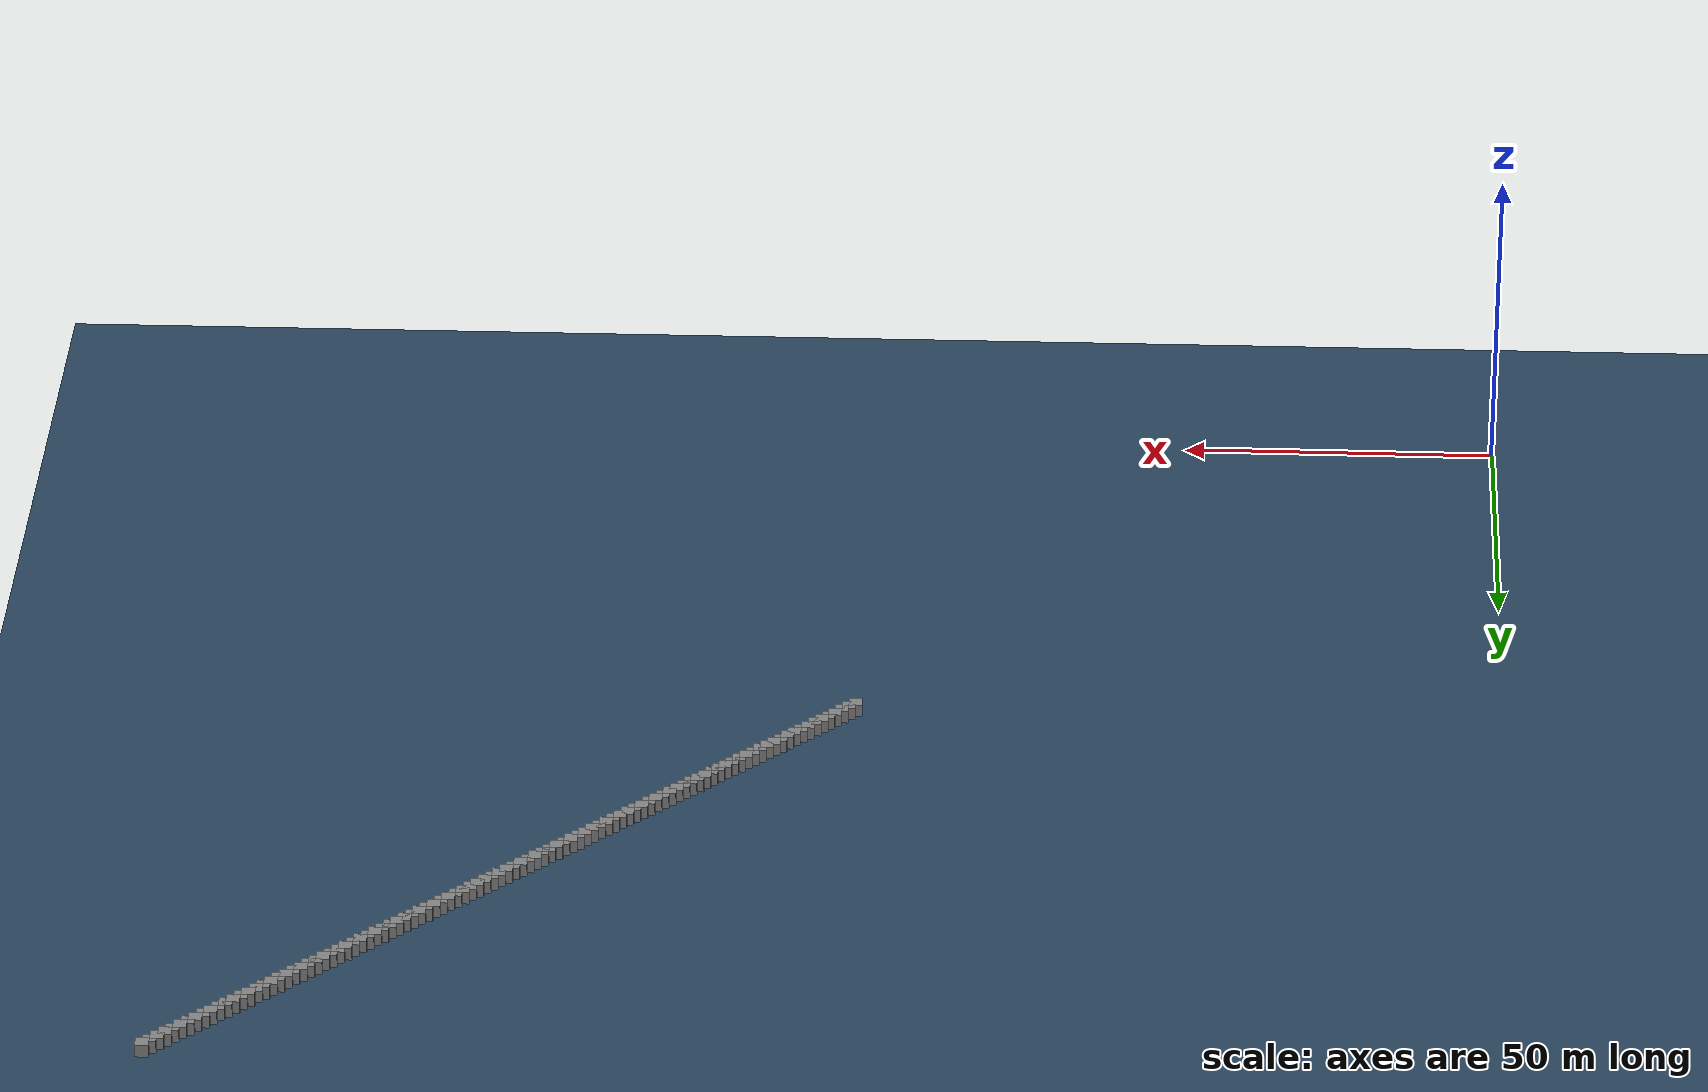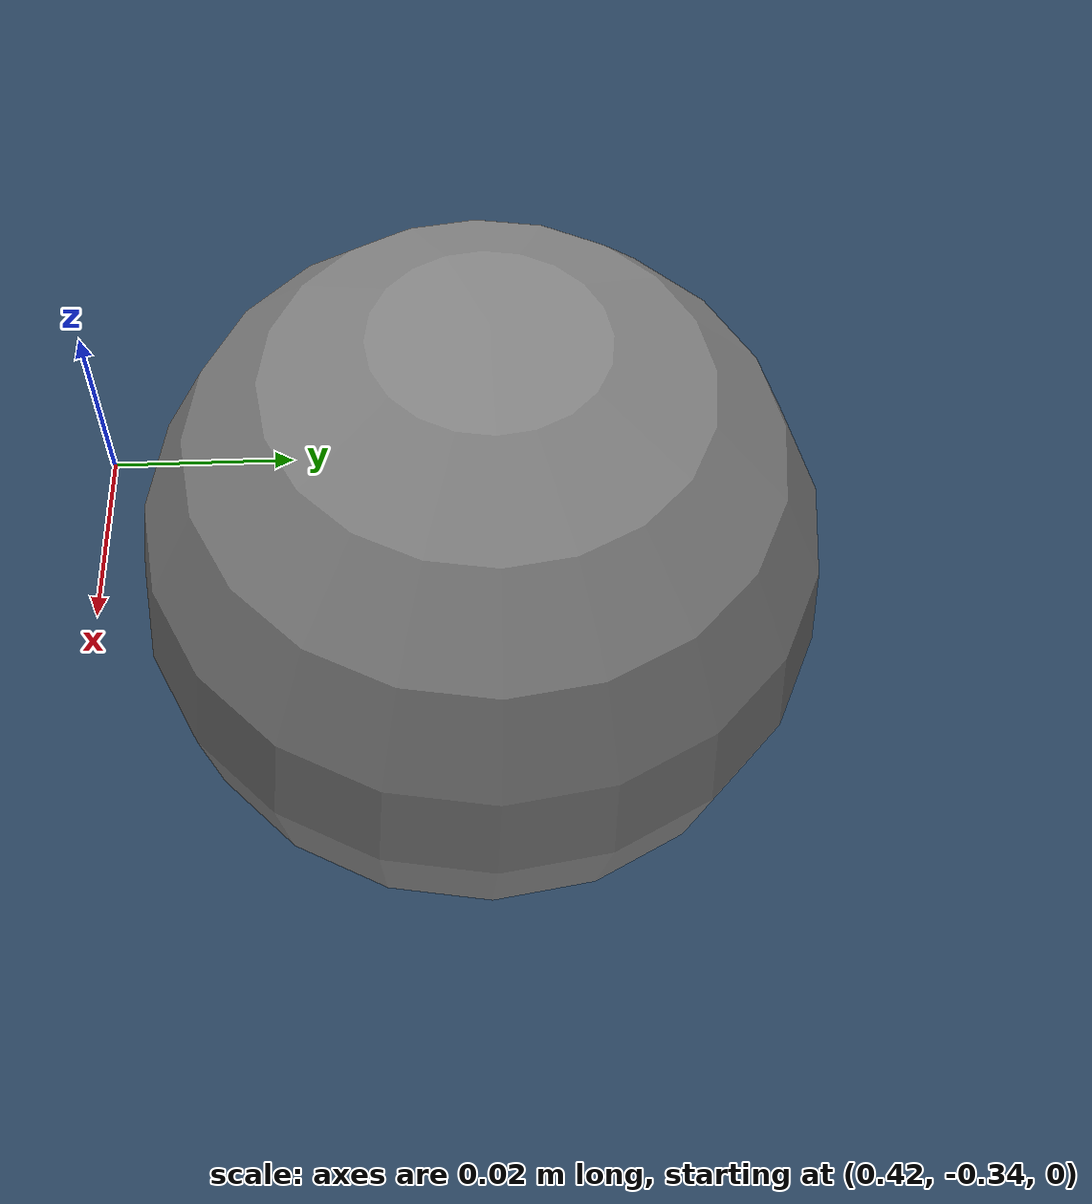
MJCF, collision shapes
<mujoco model="anymal_c scene">
  <include file="anymal_mjx_feetonly.xml" />

  <visual>
    <headlight diffuse="0.6 0.6 0.6" ambient="0.3 0.3 0.3" specular="0 0 0" />
    <rgba haze="0.15 0.25 0.35 1" />
    <global azimuth="120" elevation="-20" />
  </visual>

  <statistic center="0 0 .3" extent="1.2" />

  <asset>
    <texture type="skybox" builtin="gradient" rgb1="0.3 0.5 0.7" rgb2="0 0 0" width="512" height="3072" />
    <texture type="2d" name="groundplane" builtin="checker" mark="edge" rgb1="0.2 0.3 0.4" rgb2="0.1 0.2 0.3" markrgb="0.8 0.8 0.8" width="300" height="300" />
    <material name="groundplane" texture="groundplane" texuniform="true" texrepeat="5 5" reflectance="0.2" />
  </asset>

  <worldbody>
    <light pos="0 0 1.5" dir="0 0 -1" directional="true" />
    <geom name="floor" size="0 0 0.05" type="plane" material="groundplane" contype="2" conaffinity="1" />
  <body pos="100 100 10" quat="1.0 0.0 0.0 0.0" name="box_uHGJJ"><geom type="box" size="1.0 1.0 1.0" contype="2" conaffinity="1" /></body><body pos="101 101 10" quat="1.0 0.0 0.0 0.0" name="box_bRzGw"><geom type="box" size="1.0 1.0 1.0" contype="2" conaffinity="1" /></body><body pos="102 102 10" quat="1.0 0.0 0.0 0.0" name="box_EXtKE"><geom type="box" size="1.0 1.0 1.0" contype="2" conaffinity="1" /></body><body pos="103 103 10" quat="1.0 0.0 0.0 0.0" name="box_GA2zc"><geom type="box" size="1.0 1.0 1.0" contype="2" conaffinity="1" /></body><body pos="104 104 10" quat="1.0 0.0 0.0 0.0" name="box_hZ37R"><geom type="box" size="1.0 1.0 1.0" contype="2" conaffinity="1" /></body><body pos="105 105 10" quat="1.0 0.0 0.0 0.0" name="box_iApLd"><geom type="box" size="1.0 1.0 1.0" contype="2" conaffinity="1" /></body><body pos="106 106 10" quat="1.0 0.0 0.0 0.0" name="box_1Uyft"><geom type="box" size="1.0 1.0 1.0" contype="2" conaffinity="1" /></body><body pos="107 107 10" quat="1.0 0.0 0.0 0.0" name="box_yHT95"><geom type="box" size="1.0 1.0 1.0" contype="2" conaffinity="1" /></body><body pos="108 108 10" quat="1.0 0.0 0.0 0.0" name="box_CMuvy"><geom type="box" size="1.0 1.0 1.0" contype="2" conaffinity="1" /></body><body pos="109 109 10" quat="1.0 0.0 0.0 0.0" name="box_P6yZF"><geom type="box" size="1.0 1.0 1.0" contype="2" conaffinity="1" /></body><body pos="110 110 10" quat="1.0 0.0 0.0 0.0" name="box_B1lmp"><geom type="box" size="1.0 1.0 1.0" contype="2" conaffinity="1" /></body><body pos="111 111 10" quat="1.0 0.0 0.0 0.0" name="box_xBs5U"><geom type="box" size="1.0 1.0 1.0" contype="2" conaffinity="1" /></body><body pos="112 112 10" quat="1.0 0.0 0.0 0.0" name="box_dsSkS"><geom type="box" size="1.0 1.0 1.0" contype="2" conaffinity="1" /></body><body pos="113 113 10" quat="1.0 0.0 0.0 0.0" name="box_6NouA"><geom type="box" size="1.0 1.0 1.0" contype="2" conaffinity="1" /></body><body pos="114 114 10" quat="1.0 0.0 0.0 0.0" name="box_t5bRP"><geom type="box" size="1.0 1.0 1.0" contype="2" conaffinity="1" /></body><body pos="115 115 10" quat="1.0 0.0 0.0 0.0" name="box_1lUI9"><geom type="box" size="1.0 1.0 1.0" contype="2" conaffinity="1" /></body><body pos="116 116 10" quat="1.0 0.0 0.0 0.0" name="box_YceXa"><geom type="box" size="1.0 1.0 1.0" contype="2" conaffinity="1" /></body><body pos="117 117 10" quat="1.0 0.0 0.0 0.0" name="box_T5WsL"><geom type="box" size="1.0 1.0 1.0" contype="2" conaffinity="1" /></body><body pos="118 118 10" quat="1.0 0.0 0.0 0.0" name="box_4BIW2"><geom type="box" size="1.0 1.0 1.0" contype="2" conaffinity="1" /></body><body pos="119 119 10" quat="1.0 0.0 0.0 0.0" name="box_raRfp"><geom type="box" size="1.0 1.0 1.0" contype="2" conaffinity="1" /></body><body pos="120 120 10" quat="1.0 0.0 0.0 0.0" name="box_22Xl4"><geom type="box" size="1.0 1.0 1.0" contype="2" conaffinity="1" /></body><body pos="121 121 10" quat="1.0 0.0 0.0 0.0" name="box_egDyF"><geom type="box" size="1.0 1.0 1.0" contype="2" conaffinity="1" /></body><body pos="122 122 10" quat="1.0 0.0 0.0 0.0" name="box_FhEiG"><geom type="box" size="1.0 1.0 1.0" contype="2" conaffinity="1" /></body><body pos="123 123 10" quat="1.0 0.0 0.0 0.0" name="box_9Rf6X"><geom type="box" size="1.0 1.0 1.0" contype="2" conaffinity="1" /></body><body pos="124 124 10" quat="1.0 0.0 0.0 0.0" name="box_gVF6T"><geom type="box" size="1.0 1.0 1.0" contype="2" conaffinity="1" /></body><body pos="125 125 10" quat="1.0 0.0 0.0 0.0" name="box_j6cgZ"><geom type="box" size="1.0 1.0 1.0" contype="2" conaffinity="1" /></body><body pos="126 126 10" quat="1.0 0.0 0.0 0.0" name="box_zguVY"><geom type="box" size="1.0 1.0 1.0" contype="2" conaffinity="1" /></body><body pos="127 127 10" quat="1.0 0.0 0.0 0.0" name="box_aY5lk"><geom type="box" size="1.0 1.0 1.0" contype="2" conaffinity="1" /></body><body pos="128 128 10" quat="1.0 0.0 0.0 0.0" name="box_ZSlfy"><geom type="box" size="1.0 1.0 1.0" contype="2" conaffinity="1" /></body><body pos="129 129 10" quat="1.0 0.0 0.0 0.0" name="box_ErZsc"><geom type="box" size="1.0 1.0 1.0" contype="2" conaffinity="1" /></body><body pos="130 130 10" quat="1.0 0.0 0.0 0.0" name="box_R3lVm"><geom type="box" size="1.0 1.0 1.0" contype="2" conaffinity="1" /></body><body pos="131 131 10" quat="1.0 0.0 0.0 0.0" name="box_F7Fh7"><geom type="box" size="1.0 1.0 1.0" contype="2" conaffinity="1" /></body><body pos="132 132 10" quat="1.0 0.0 0.0 0.0" name="box_ob0Dn"><geom type="box" size="1.0 1.0 1.0" contype="2" conaffinity="1" /></body><body pos="133 133 10" quat="1.0 0.0 0.0 0.0" name="box_mb9K4"><geom type="box" size="1.0 1.0 1.0" contype="2" conaffinity="1" /></body><body pos="134 134 10" quat="1.0 0.0 0.0 0.0" name="box_Cv5fU"><geom type="box" size="1.0 1.0 1.0" contype="2" conaffinity="1" /></body><body pos="135 135 10" quat="1.0 0.0 0.0 0.0" name="box_PhPGk"><geom type="box" size="1.0 1.0 1.0" contype="2" conaffinity="1" /></body><body pos="136 136 10" quat="1.0 0.0 0.0 0.0" name="box_egup4"><geom type="box" size="1.0 1.0 1.0" contype="2" conaffinity="1" /></body><body pos="137 137 10" quat="1.0 0.0 0.0 0.0" name="box_qHlLA"><geom type="box" size="1.0 1.0 1.0" contype="2" conaffinity="1" /></body><body pos="138 138 10" quat="1.0 0.0 0.0 0.0" name="box_vudrk"><geom type="box" size="1.0 1.0 1.0" contype="2" conaffinity="1" /></body><body pos="139 139 10" quat="1.0 0.0 0.0 0.0" name="box_735YD"><geom type="box" size="1.0 1.0 1.0" contype="2" conaffinity="1" /></body><body pos="140 140 10" quat="1.0 0.0 0.0 0.0" name="box_oDhYS"><geom type="box" size="1.0 1.0 1.0" contype="2" conaffinity="1" /></body><body pos="141 141 10" quat="1.0 0.0 0.0 0.0" name="box_0YvHo"><geom type="box" size="1.0 1.0 1.0" contype="2" conaffinity="1" /></body><body pos="142 142 10" quat="1.0 0.0 0.0 0.0" name="box_tDLiS"><geom type="box" size="1.0 1.0 1.0" contype="2" conaffinity="1" /></body><body pos="143 143 10" quat="1.0 0.0 0.0 0.0" name="box_1kno3"><geom type="box" size="1.0 1.0 1.0" contype="2" conaffinity="1" /></body><body pos="144 144 10" quat="1.0 0.0 0.0 0.0" name="box_vLNdK"><geom type="box" size="1.0 1.0 1.0" contype="2" conaffinity="1" /></body><body pos="145 145 10" quat="1.0 0.0 0.0 0.0" name="box_7Bx7a"><geom type="box" size="1.0 1.0 1.0" contype="2" conaffinity="1" /></body><body pos="146 146 10" quat="1.0 0.0 0.0 0.0" name="box_UB1ke"><geom type="box" size="1.0 1.0 1.0" contype="2" conaffinity="1" /></body><body pos="147 147 10" quat="1.0 0.0 0.0 0.0" name="box_mvtoA"><geom type="box" size="1.0 1.0 1.0" contype="2" conaffinity="1" /></body><body pos="148 148 10" quat="1.0 0.0 0.0 0.0" name="box_tRIuq"><geom type="box" size="1.0 1.0 1.0" contype="2" conaffinity="1" /></body><body pos="149 149 10" quat="1.0 0.0 0.0 0.0" name="box_F1Pwe"><geom type="box" size="1.0 1.0 1.0" contype="2" conaffinity="1" /></body><body pos="150 150 10" quat="1.0 0.0 0.0 0.0" name="box_Kkzxb"><geom type="box" size="1.0 1.0 1.0" contype="2" conaffinity="1" /></body><body pos="151 151 10" quat="1.0 0.0 0.0 0.0" name="box_JzQMD"><geom type="box" size="1.0 1.0 1.0" contype="2" conaffinity="1" /></body><body pos="152 152 10" quat="1.0 0.0 0.0 0.0" name="box_J0zTg"><geom type="box" size="1.0 1.0 1.0" contype="2" conaffinity="1" /></body><body pos="153 153 10" quat="1.0 0.0 0.0 0.0" name="box_TQn08"><geom type="box" size="1.0 1.0 1.0" contype="2" conaffinity="1" /></body><body pos="154 154 10" quat="1.0 0.0 0.0 0.0" name="box_1utY0"><geom type="box" size="1.0 1.0 1.0" contype="2" conaffinity="1" /></body><body pos="155 155 10" quat="1.0 0.0 0.0 0.0" name="box_loX0C"><geom type="box" size="1.0 1.0 1.0" contype="2" conaffinity="1" /></body><body pos="156 156 10" quat="1.0 0.0 0.0 0.0" name="box_ml9in"><geom type="box" size="1.0 1.0 1.0" contype="2" conaffinity="1" /></body><body pos="157 157 10" quat="1.0 0.0 0.0 0.0" name="box_Bj2qo"><geom type="box" size="1.0 1.0 1.0" contype="2" conaffinity="1" /></body><body pos="158 158 10" quat="1.0 0.0 0.0 0.0" name="box_SXEiq"><geom type="box" size="1.0 1.0 1.0" contype="2" conaffinity="1" /></body><body pos="159 159 10" quat="1.0 0.0 0.0 0.0" name="box_kQdaP"><geom type="box" size="1.0 1.0 1.0" contype="2" conaffinity="1" /></body><body pos="160 160 10" quat="1.0 0.0 0.0 0.0" name="box_5RdpG"><geom type="box" size="1.0 1.0 1.0" contype="2" conaffinity="1" /></body><body pos="161 161 10" quat="1.0 0.0 0.0 0.0" name="box_khsYo"><geom type="box" size="1.0 1.0 1.0" contype="2" conaffinity="1" /></body><body pos="162 162 10" quat="1.0 0.0 0.0 0.0" name="box_NXLAi"><geom type="box" size="1.0 1.0 1.0" contype="2" conaffinity="1" /></body><body pos="163 163 10" quat="1.0 0.0 0.0 0.0" name="box_Y2mQF"><geom type="box" size="1.0 1.0 1.0" contype="2" conaffinity="1" /></body><body pos="164 164 10" quat="1.0 0.0 0.0 0.0" name="box_ZWjdr"><geom type="box" size="1.0 1.0 1.0" contype="2" conaffinity="1" /></body><body pos="165 165 10" quat="1.0 0.0 0.0 0.0" name="box_jAnXs"><geom type="box" size="1.0 1.0 1.0" contype="2" conaffinity="1" /></body><body pos="166 166 10" quat="1.0 0.0 0.0 0.0" name="box_9IMuk"><geom type="box" size="1.0 1.0 1.0" contype="2" conaffinity="1" /></body><body pos="167 167 10" quat="1.0 0.0 0.0 0.0" name="box_3rhZ3"><geom type="box" size="1.0 1.0 1.0" contype="2" conaffinity="1" /></body><body pos="168 168 10" quat="1.0 0.0 0.0 0.0" name="box_V0n0h"><geom type="box" size="1.0 1.0 1.0" contype="2" conaffinity="1" /></body><body pos="169 169 10" quat="1.0 0.0 0.0 0.0" name="box_r4ieb"><geom type="box" size="1.0 1.0 1.0" contype="2" conaffinity="1" /></body><body pos="170 170 10" quat="1.0 0.0 0.0 0.0" name="box_zIykm"><geom type="box" size="1.0 1.0 1.0" contype="2" conaffinity="1" /></body><body pos="171 171 10" quat="1.0 0.0 0.0 0.0" name="box_UR2Rj"><geom type="box" size="1.0 1.0 1.0" contype="2" conaffinity="1" /></body><body pos="172 172 10" quat="1.0 0.0 0.0 0.0" name="box_jHQbJ"><geom type="box" size="1.0 1.0 1.0" contype="2" conaffinity="1" /></body><body pos="173 173 10" quat="1.0 0.0 0.0 0.0" name="box_CAyEz"><geom type="box" size="1.0 1.0 1.0" contype="2" conaffinity="1" /></body><body pos="174 174 10" quat="1.0 0.0 0.0 0.0" name="box_RsKkW"><geom type="box" size="1.0 1.0 1.0" contype="2" conaffinity="1" /></body><body pos="175 175 10" quat="1.0 0.0 0.0 0.0" name="box_gLpzX"><geom type="box" size="1.0 1.0 1.0" contype="2" conaffinity="1" /></body><body pos="176 176 10" quat="1.0 0.0 0.0 0.0" name="box_hmF5o"><geom type="box" size="1.0 1.0 1.0" contype="2" conaffinity="1" /></body><body pos="177 177 10" quat="1.0 0.0 0.0 0.0" name="box_pbGIj"><geom type="box" size="1.0 1.0 1.0" contype="2" conaffinity="1" /></body><body pos="178 178 10" quat="1.0 0.0 0.0 0.0" name="box_KW85l"><geom type="box" size="1.0 1.0 1.0" contype="2" conaffinity="1" /></body><body pos="179 179 10" quat="1.0 0.0 0.0 0.0" name="box_d2ytn"><geom type="box" size="1.0 1.0 1.0" contype="2" conaffinity="1" /></body><body pos="180 180 10" quat="1.0 0.0 0.0 0.0" name="box_oUfYb"><geom type="box" size="1.0 1.0 1.0" contype="2" conaffinity="1" /></body><body pos="181 181 10" quat="1.0 0.0 0.0 0.0" name="box_WD229"><geom type="box" size="1.0 1.0 1.0" contype="2" conaffinity="1" /></body><body pos="182 182 10" quat="1.0 0.0 0.0 0.0" name="box_9rSn8"><geom type="box" size="1.0 1.0 1.0" contype="2" conaffinity="1" /></body><body pos="183 183 10" quat="1.0 0.0 0.0 0.0" name="box_pJYv7"><geom type="box" size="1.0 1.0 1.0" contype="2" conaffinity="1" /></body><body pos="184 184 10" quat="1.0 0.0 0.0 0.0" name="box_vkSw1"><geom type="box" size="1.0 1.0 1.0" contype="2" conaffinity="1" /></body><body pos="185 185 10" quat="1.0 0.0 0.0 0.0" name="box_QZf48"><geom type="box" size="1.0 1.0 1.0" contype="2" conaffinity="1" /></body><body pos="186 186 10" quat="1.0 0.0 0.0 0.0" name="box_Neup5"><geom type="box" size="1.0 1.0 1.0" contype="2" conaffinity="1" /></body><body pos="187 187 10" quat="1.0 0.0 0.0 0.0" name="box_WFE05"><geom type="box" size="1.0 1.0 1.0" contype="2" conaffinity="1" /></body><body pos="188 188 10" quat="1.0 0.0 0.0 0.0" name="box_4dDYl"><geom type="box" size="1.0 1.0 1.0" contype="2" conaffinity="1" /></body><body pos="189 189 10" quat="1.0 0.0 0.0 0.0" name="box_UlLiT"><geom type="box" size="1.0 1.0 1.0" contype="2" conaffinity="1" /></body><body pos="190 190 10" quat="1.0 0.0 0.0 0.0" name="box_N8ell"><geom type="box" size="1.0 1.0 1.0" contype="2" conaffinity="1" /></body><body pos="191 191 10" quat="1.0 0.0 0.0 0.0" name="box_KynDG"><geom type="box" size="1.0 1.0 1.0" contype="2" conaffinity="1" /></body><body pos="192 192 10" quat="1.0 0.0 0.0 0.0" name="box_Fytmh"><geom type="box" size="1.0 1.0 1.0" contype="2" conaffinity="1" /></body><body pos="193 193 10" quat="1.0 0.0 0.0 0.0" name="box_3UXTP"><geom type="box" size="1.0 1.0 1.0" contype="2" conaffinity="1" /></body><body pos="194 194 10" quat="1.0 0.0 0.0 0.0" name="box_j7Je0"><geom type="box" size="1.0 1.0 1.0" contype="2" conaffinity="1" /></body><body pos="195 195 10" quat="1.0 0.0 0.0 0.0" name="box_0fXms"><geom type="box" size="1.0 1.0 1.0" contype="2" conaffinity="1" /></body><body pos="196 196 10" quat="1.0 0.0 0.0 0.0" name="box_OmLNK"><geom type="box" size="1.0 1.0 1.0" contype="2" conaffinity="1" /></body><body pos="197 197 10" quat="1.0 0.0 0.0 0.0" name="box_cEIbw"><geom type="box" size="1.0 1.0 1.0" contype="2" conaffinity="1" /></body><body pos="198 198 10" quat="1.0 0.0 0.0 0.0" name="box_kP8r4"><geom type="box" size="1.0 1.0 1.0" contype="2" conaffinity="1" /></body><body pos="199 199 10" quat="1.0 0.0 0.0 0.0" name="box_orS2d"><geom type="box" size="1.0 1.0 1.0" contype="2" conaffinity="1" /></body></worldbody>
</mujoco>

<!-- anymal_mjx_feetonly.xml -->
<mujoco model="anymal_c">
  <compiler angle="radian" meshdir="assets" texturedir="assets" autolimits="true"/>

 <custom>
    <numeric data="4" name="max_contact_points"/>
    <numeric data="25" name="max_geom_pairs"/>
 </custom>
  <option iterations="5" ls_iterations="5" timestep="0.004" integrator="Euler">
    <flag eulerdamp="disable"/>
  </option>

  <default>
    <material specular="0" shininess="0.25"/>
    <default class="anymal_c">
      <joint damping="1"/>
      <default class="visual">
        <geom type="mesh" contype="0" conaffinity="0" group="2"/>
        <default class="visual_zflip">
          <geom quat="0 0 0 1"/>
        </default>
      </default>
      <default class="collision">
         <geom group="3"/>
        <default class="foot">
          <geom type="sphere" size="0.03" pos="0 0 0.02325" solimp="0.9 .95 0.023" contype="1" conaffinity="2" />
        </default>
      </default>
      <default class="affine">
        <position kp="100" ctrlrange="-6.28 6.28" forcerange="-80 80"/>
      </default>
    </default>
  </default>

  <asset>
    <material name="black_plastic" rgba="0.007 0.007 0.007 1"/>
    <material name="green" rgba="0.052 0.178 0.033 1"/>
    <material name="red" rgba="0.178 0.006 0.005 1"/>
    <material name="yellow" rgba="0.178 0.119 0.006 1"/>
    <material name="lwl" rgba="0.8 0.8 0.8 1"/>
    <material name="base" texture="base"/>
    <material name="top_shell" texture="top_shell"/>
    <material name="bottom_shell" texture="bottom_shell"/>
    <material name="hip_l" texture="hip_l"/>
    <material name="thigh" texture="thigh"/>
    <material name="shank_l" texture="shank_l"/>
    <material name="foot" texture="foot"/>
    <material name="hip_r" texture="hip_r"/>
    <material name="shank" texture="shank_r"/>
    <material name="hatch" texture="hatch"/>
    <material name="remote" texture="remote"/>
    <material name="handle" texture="handle"/>
    <material name="face" texture="face"/>
    <material name="depth_camera" texture="depth_camera"/>
    <material name="wide_angle_camera" texture="wide_angle_camera"/>
    <material name="battery" texture="battery"/>
    <material name="lidar_cage" texture="lidar_cage"/>
    <material name="lidar" texture="lidar"/>
    <material name="drive" texture="drive"/>

    <texture type="2d" name="base" file="base.png"/>
    <texture type="2d" name="top_shell" file="top_shell.png"/>
    <texture type="2d" name="bottom_shell" file="bottom_shell.png"/>
    <texture type="2d" name="remote" file="remote.png"/>
    <texture type="2d" name="hatch" file="hatch.png"/>
    <texture type="2d" name="handle" file="handle.png"/>
    <texture type="2d" name="face" file="face.png"/>
    <texture type="2d" name="battery" file="battery.png"/>
    <texture type="2d" name="lidar_cage" file="lidar_cage.png"/>
    <texture type="2d" name="depth_camera" file="depth_camera.png"/>
    <texture type="2d" name="wide_angle_camera" file="wide_angle_camera.png"/>
    <texture type="2d" name="lidar" file="lidar.png"/>
    <texture type="2d" name="drive" file="drive.png"/>
    <texture type="2d" name="hip_l" file="hip_l.png"/>
    <texture type="2d" name="shank_l" file="shank_l.png"/>
    <texture type="2d" name="foot" file="foot.png"/>
    <texture type="2d" name="thigh" file="thigh.png"/>
    <texture type="2d" name="shank_r" file="shank_r.png"/>
    <texture type="2d" name="hip_r" file="hip_r.png"/>

    <mesh file="base_0.obj"/>
    <mesh file="base_1.obj"/>
    <mesh file="base_2.obj"/>
    <mesh file="base_3.obj"/>
    <mesh file="base_4.obj"/>
    <mesh file="base_5.obj"/>
    <mesh file="top_shell.obj"/>
    <mesh file="bottom_shell.obj"/>
    <mesh file="remote.obj"/>
    <mesh file="handle.obj"/>
    <mesh file="face.obj"/>
    <mesh file="wide_angle_camera.obj"/>
    <mesh file="depth_camera.obj"/>
    <mesh file="battery.obj"/>
    <mesh file="lidar_cage.obj"/>
    <mesh file="lidar.obj"/>
    <mesh file="drive.obj"/>
    <mesh file="hip_l.obj"/>
    <mesh file="thigh.obj"/>
    <mesh file="shank_l.obj"/>
    <mesh file="foot.obj"/>
    <mesh file="hip_r.obj"/>
    <mesh file="hatch.obj"/>
    <mesh file="shank_r.obj"/>
  </asset>

  <worldbody>
    <body name="base" pos="0 0 0.62" quat="0 0 0 1" childclass="anymal_c">
      <camera name="track" pos="0 -2.5 0" xyaxes="1 0 0 0 1 5" mode="trackcom"/>
      <freejoint/>
      <inertial mass="19.2035" pos="0.0025 0 0.0502071" quat="0.5 0.5 0.5 0.5" diaginertia="0.639559 0.624031 0.217374"/>
      <geom mesh="base_0" material="green" class="visual"/>
      <geom mesh="base_1" material="yellow" class="visual"/>
      <geom mesh="base_2" material="red" class="visual"/>
      <geom mesh="base_3" material="black_plastic" class="visual"/>
      <geom mesh="base_4" material="lwl" class="visual"/>
      <geom mesh="base_5" material="base" class="visual"/>
      <geom material="top_shell" mesh="top_shell" class="visual"/>
      <geom material="bottom_shell" mesh="bottom_shell" class="visual"/>
      <geom material="remote" mesh="remote" class="visual"/>
      <geom material="handle" mesh="handle" class="visual"/>
      <geom pos="0.4145 0 0" material="face" mesh="face" class="visual"/>
      <geom pos="-0.4145 0 0" material="face" mesh="face" class="visual_zflip"/>
      <geom material="battery" mesh="battery" class="visual"/>
      <geom pos="0.116 0 0.073" material="hatch" mesh="hatch" class="visual"/>
      <site name="imu" pos="0 0 0 "/>
      <body name="LF_HIP" pos="0.2999 0.104 0" quat="0.258819 0.965926 0 0">
        <inertial mass="2.781" pos="0.0566606 -0.015294 -0.00829784" quat="-0.127978 0.709783 -0.135278 0.679359"
          diaginertia="0.00585729 0.00491868 0.00329081"/>
        <joint name="LF_HAA" axis="1 0 0" range="-0.72 0.49"/>
        <geom quat="0.258819 -0.965926 0 0" material="hip_l" mesh="hip_l" class="visual"/>
        <geom pos="0.0599 -0.0725816 -0.041905" quat="0.183013 -0.683013 0.683013 0.183013" material="drive"
          mesh="drive" class="visual"/>
        <body name="LF_THIGH" pos="0.0599 -0.0725816 -0.041905" quat="0.183013 -0.683013 0.683013 0.183013">
          <inertial mass="3.071" pos="0.0308147 4.64995e-05 -0.245696" quat="0.993166 -0.00515309 -0.0806592 0.0841972"
            diaginertia="0.03025 0.0298943 0.00418465"/>
          <joint name="LF_HFE" axis="1 0 0" range="-9.42478 9.42478"/>
          <geom quat="1 0 0 -1" material="thigh" mesh="thigh" class="visual"/>
          <geom pos="0.1003 0 -0.285" material="drive" mesh="drive" class="visual"/>
          <body name="LF_SHANK" pos="0.1003 0 -0.285">
            <inertial mass="0.58842" pos="0.005462 -0.0612528 -0.0806598"
              quat="0.992934 -0.115904 -0.00105487 -0.0254421" diaginertia="0.0101637 0.00923838 0.00111927"/>
            <joint name="LF_KFE" axis="1 0 0" range="-9.42478 9.42478"/>
            <geom quat="1 0 0 -1" material="shank_l" mesh="shank_l" class="visual"/>
            <geom pos="0.01305 -0.08795 -0.33797" quat="0.382683 0 0 -0.92388" material="foot" mesh="foot"
              class="visual"/>
            <geom name="FL" class="foot" pos="0.01305 -0.08795 -0.31547"/>
            <site name="FL_foot" pos="0.01305 -0.08795 -0.31547"/>
          </body>
        </body>
      </body>
      <body name="RF_HIP" pos="0.2999 -0.104 0" quat="0.258819 -0.965926 0 0">
        <inertial mass="2.781" pos="0.0567633 0.015294 -0.00829784" quat="0.13524 0.679072 0.127985 0.710065"
          diaginertia="0.00585928 0.0049205 0.00329064"/>
        <joint name="RF_HAA" axis="1 0 0" range="-0.49 0.72"/>
        <geom quat="0.258819 0.965926 0 0" material="hip_r" mesh="hip_r" class="visual"/>
        <geom pos="0.0599 0.0725816 -0.041905" quat="0.183013 0.683013 0.683013 -0.183013" material="drive" mesh="drive"
          class="visual"/>
        <body name="RF_THIGH" pos="0.0599 0.0725816 -0.041905" quat="0.183013 0.683013 0.683013 -0.183013">
          <inertial mass="3.071" pos="0.0308147 4.64995e-05 -0.245696" quat="0.992775 -0.00512735 -0.0806685 0.0886811"
            diaginertia="0.0302511 0.0298933 0.0041845"/>
          <joint name="RF_HFE" axis="-1 0 0" range="-9.42478 9.42478"/>
          <geom quat="1 0 0 -1" material="thigh" mesh="thigh" class="visual"/>
          <geom pos="0.1003 0 -0.285" material="drive" mesh="drive" class="visual"/>
          <body name="RF_SHANK" pos="0.1003 0 -0.285">
            <inertial mass="0.58842" pos="0.005462 0.0612528 -0.0806598" quat="0.992934 0.115904 -0.00105487 0.0254421"
              diaginertia="0.0101637 0.00923838 0.00111927"/>
            <joint name="RF_KFE" axis="-1 0 0" range="-9.42478 9.42478"/>
            <geom quat="1 0 0 1" material="shank" mesh="shank_r" class="visual"/>
            <geom pos="0.01305 0.08795 -0.33797" quat="0.382683 0 0 0.92388" material="foot" mesh="foot" class="visual"/>
            <geom name="FR" class="foot" pos="0.01305 0.08795 -0.31547"/>
            <site name="FR_foot" pos="0.01305 0.08795 -0.31547"/>
          </body>
        </body>
      </body>
      <body name="LH_HIP" pos="-0.2999 0.104 0" quat="0 0 0.965926 -0.258819">
        <inertial mass="2.781" pos="0.0567633 0.015294 -0.00829784" quat="0.13524 0.679072 0.127985 0.710065"
          diaginertia="0.00585928 0.0049205 0.00329064"/>
        <joint name="LH_HAA" axis="-1 0 0" range="-0.72 0.49"/>
        <geom quat="-0.258819 -0.965926 0 0" material="hip_r" mesh="hip_r" class="visual"/>
        <geom pos="0.0599 0.0725816 -0.041905" quat="0.183013 0.683013 0.683013 -0.183013" material="drive" mesh="drive"
          class="visual"/>
        <body name="LH_THIGH" pos="0.0599 0.0725816 -0.041905" quat="0.183013 0.683013 0.683013 -0.183013">
          <inertial mass="3.071" pos="0.0308147 4.64995e-05 -0.245696" quat="0.992775 -0.00512735 -0.0806685 0.0886811"
            diaginertia="0.0302511 0.0298933 0.0041845"/>
          <joint name="LH_HFE" axis="1 0 0" range="-9.42478 9.42478"/>
          <geom quat="1 0 0 -1" material="thigh" mesh="thigh" class="visual"/>
          <geom pos="0.1003 0 -0.285" material="drive" mesh="drive" class="visual"/>
          <body name="LH_SHANK" pos="0.1003 0 -0.285">
            <inertial mass="0.58842" pos="0.005462 0.0612528 -0.0806598" quat="0.992934 0.115904 -0.00105487 0.0254421"
              diaginertia="0.0101637 0.00923838 0.00111927"/>
            <joint name="LH_KFE" axis="1 0 0" range="-9.42478 9.42478"/>
            <geom quat="-1 0 0 -1" material="shank" mesh="shank_r" class="visual"/>
            <geom pos="0.01305 0.08795 -0.33797" quat="-0.382683 0 0 -0.92388" material="foot" mesh="foot"
              class="visual"/>
            <geom name="RL" class="foot" pos="0.01305 0.08795 -0.31547"/>
            <site name="RL_foot" pos="0.01305 0.08795 -0.31547"/>
          </body>
        </body>
      </body>
      <body name="RH_HIP" pos="-0.2999 -0.104 0" quat="0 0 -0.965926 -0.258819">
        <inertial mass="2.781" pos="0.0566606 -0.015294 -0.00829784" quat="-0.127978 0.709783 -0.135278 0.679359"
          diaginertia="0.00585729 0.00491868 0.00329081"/>
        <joint name="RH_HAA" axis="-1 0 0" range="-0.49 0.72"/>
        <geom quat="-0.258819 0.965926 0 0" material="hip_l" mesh="hip_l" class="visual"/>
        <geom pos="0.0599 -0.0725816 -0.041905" quat="-0.183013 0.683013 -0.683013 -0.183013" material="drive"
          mesh="drive" class="visual"/>
        <body name="RH_THIGH" pos="0.0599 -0.0725816 -0.041905" quat="-0.183013 0.683013 -0.683013 -0.183013">
          <inertial mass="3.071" pos="0.0308147 4.64995e-05 -0.245696" quat="0.993166 -0.00515309 -0.0806592 0.0841972"
            diaginertia="0.03025 0.0298943 0.00418465"/>
          <joint name="RH_HFE" axis="-1 0 0" range="-9.42478 9.42478"/>
          <geom quat="1 0 0 -1" material="thigh" mesh="thigh" class="visual"/>
          <geom pos="0.1003 0 -0.285" material="drive" mesh="drive" class="visual"/>
          <body name="RH_SHANK" pos="0.1003 0 -0.285">
            <inertial mass="0.58842" pos="0.005462 -0.0612528 -0.0806598"
              quat="0.992934 -0.115904 -0.00105487 -0.0254421" diaginertia="0.0101637 0.00923838 0.00111927"/>
            <joint name="RH_KFE" axis="-1 0 0" range="-9.42478 9.42478"/>
            <geom quat="1 0 0 -1" material="shank_l" mesh="shank_l" class="visual"/>
            <geom pos="0.01305 -0.08795 -0.33797" quat="0.382683 0 0 -0.92388" material="foot" mesh="foot"
              class="visual"/>
            <geom name="RR" class="foot" pos="0.01305 -0.08795 -0.31547"/>
            <site name="RR_foot" pos="0.01305 -0.08795 -0.31547"/>
          </body>
        </body>
      </body>
    </body>
  </worldbody>

    <sensor>
    <gyro site="imu" name="gyro"/>
    <accelerometer site="imu" name="accelerometer"/>
    <framequat objtype="site" objname="imu" name="orientation"/>
    <framepos objtype="site" objname="imu" name="global_position"/>
    <framelinvel objtype="site" objname="imu" name="global_linvel"/>
    <frameangvel objtype="site" objname="imu" name="global_angvel"/>
    <!-- returns local velocity of robot -->
    <velocimeter site="imu" name="local_linvel"/>
    <framezaxis objtype="site" objname="imu" name="upvector"/>
    <framepos objtype="site" objname="FR_foot" name="FR_pos" reftype="site" refname="imu"/>
    <framepos objtype="site" objname="FL_foot" name="FL_pos" reftype="site" refname="imu"/>
    <framepos objtype="site" objname="RR_foot" name="RR_pos" reftype="site" refname="imu"/>
    <framepos objtype="site" objname="RL_foot" name="RL_pos" reftype="site" refname="imu"/>
    <framelinvel objtype="site" objname="FR_foot" name="FR_foot_global_linvel"/>
    <framelinvel objtype="site" objname="FL_foot" name="FL_foot_global_linvel"/>
    <framelinvel objtype="site" objname="RR_foot" name="RR_foot_global_linvel"/>
    <framelinvel objtype="site" objname="RL_foot" name="RL_foot_global_linvel"/>
    <contact name="FR_floor_found" geom1="FR" reduce="mindist" num="1" data="found"/>
    <contact name="FL_floor_found" geom1="FL" reduce="mindist" num="1" data="found"/>
    <contact name="RR_floor_found" geom1="RR" reduce="mindist" num="1" data="found"/>
    <contact name="RL_floor_found" geom1="RL" reduce="mindist" num="1" data="found"/>
  </sensor>

  <actuator>
    <position class="affine" joint="LF_HAA" name="LF_HAA"/>
    <position class="affine" joint="LF_HFE" name="LF_HFE"/>
    <position class="affine" joint="LF_KFE" name="LF_KFE"/>
    <position class="affine" joint="RF_HAA" name="RF_HAA"/>
    <position class="affine" joint="RF_HFE" name="RF_HFE"/>
    <position class="affine" joint="RF_KFE" name="RF_KFE"/>
    <position class="affine" joint="LH_HAA" name="LH_HAA"/>
    <position class="affine" joint="LH_HFE" name="LH_HFE"/>
    <position class="affine" joint="LH_KFE" name="LH_KFE"/>
    <position class="affine" joint="RH_HAA" name="RH_HAA"/>
    <position class="affine" joint="RH_HFE" name="RH_HFE"/>
    <position class="affine" joint="RH_KFE" name="RH_KFE"/>
  </actuator>

  <!-- A higher standing position -->
  <keyframe>
    <key name="home"
      qpos="0.0 0.0 0.56 1.0 0.0 0.0 0.0 0.0 0.5235987755982988 -0.7853981 0.0 0.5235987755982988 -0.7853981 0.0 -0.5235987755982988 0.7853981 0.0 -0.5235987755982988 0.7853981"/>
  </keyframe>
</mujoco>
